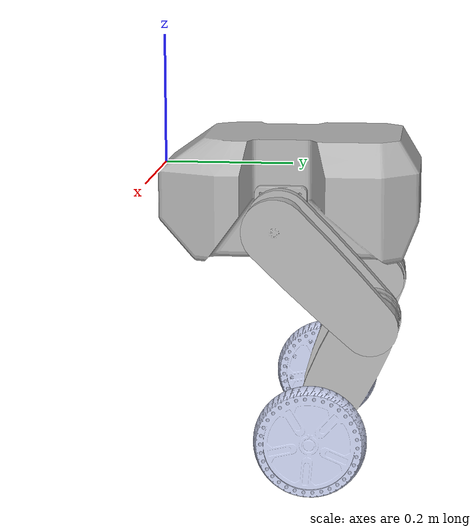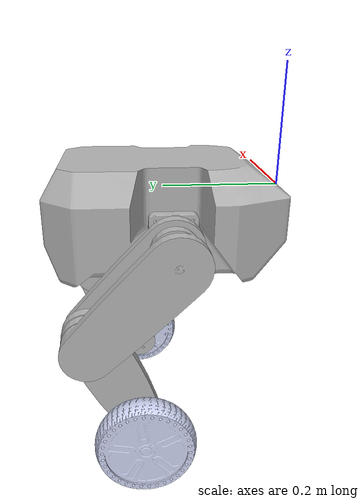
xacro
<?xml version="1.0"?>
<robot xmlns:xacro="http://www.ros.org/wiki/xacro" name="reflex">

  <!-- Arguments -->
  <xacro:arg name="prefix" default=""/>
  <xacro:property name="prefix" value="$(arg prefix)" />

  <!-- Include components -->
  <xacro:include filename="$(find reflex_descriptions)/urdf/components/base.xacro" />
  <xacro:include filename="$(find reflex_descriptions)/urdf/components/left_leg.xacro" />
  <xacro:include filename="$(find reflex_descriptions)/urdf/components/right_leg.xacro" />

  <!-- Build robot -->
  <link name="${prefix}base_root"/>

  <xacro:reflex_base prefix="${prefix}" />

  <joint name="${prefix}base_root_joint" type="fixed">
    <parent link="${prefix}base_root" />
    <child link="${prefix}base_link" />
    <origin xyz="0 0 0" rpy="0 0 0" />
  </joint>

  <xacro:reflex_left_leg prefix="${prefix}" parent="${prefix}base_link" />
  <xacro:reflex_right_leg prefix="${prefix}" parent="${prefix}base_link" />

</robot>

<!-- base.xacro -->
<robot xmlns:xacro="http://www.ros.org/wiki/xacro">

  <xacro:macro name="reflex_base" params="prefix">

    <link name="${prefix}base_link">
      <inertial>
        <origin xyz="2.92339840704624E-06 0.195675441175354 -0.0667288023592446" rpy="0 0 0"/>
        <mass value="4.45917765815169"/>
        <inertia
          ixx="0.0475762402880365" ixy="3.04028327588199E-06" ixz="-2.90552883862899E-06"
          iyy="0.0259424865395697" iyz="-5.46372140224359E-05"
          izz="0.0523223046501137"/>
      </inertial>

      <visual>
        <origin xyz="0 0 0" rpy="0 0 0"/>
        <geometry>
          <!-- Update path to your package layout -->
          <mesh filename="$(find reflex_descriptions)/models/Main.STL"/>
        </geometry>
        <material name="reflex_grey">
          <color rgba="0.698039215686274 0.698039215686274 0.698039215686274 1"/>
        </material>
      </visual>

      <collision>
        <origin xyz="0 0 0" rpy="0 0 0"/>
        <geometry>
          <mesh filename="$(find reflex_descriptions)/models/Main.STL"/>
        </geometry>
      </collision>
    </link>

  </xacro:macro>

</robot>

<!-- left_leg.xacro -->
<robot xmlns:xacro="http://www.ros.org/wiki/xacro">

  <xacro:macro name="reflex_left_leg" params="prefix parent">

    <!-- Left Hip link -->
    <link name="${prefix}Left_Hip">
      <inertial>
        <origin xyz="0.049151 -0.09472 -4.3652E-08" rpy="0 0 0"/>
        <mass value="1.5424"/>
        <inertia
          ixx="0.010215" ixy="0.0004342" ixz="-5.0861E-10"
          iyy="0.0011474" iyz="-1.6319E-10"
          izz="0.0093639"/>
      </inertial>
      <visual>
        <origin xyz="0 0 0" rpy="0 0 0"/>
        <geometry>
          <mesh filename="$(find reflex_descriptions)/models/Left_Hip.STL"/>
        </geometry>
        <material name="reflex_grey">
          <color rgba="0.69804 0.69804 0.69804 1"/>
        </material>
      </visual>
      <collision>
        <origin xyz="0 0 0" rpy="0 0 0"/>
        <geometry>
          <mesh filename="$(find reflex_descriptions)/models/Left_Hip.STL"/>
        </geometry>
      </collision>
    </link>

    <!-- Left Hip joint -->
    <joint name="${prefix}Left_Hip_joint" type="revolute">
      <origin xyz="0.2064 0.19 -0.07" rpy="0.7854 0 3.1416"/>
      <parent link="${parent}"/>
      <child link="${prefix}Left_Hip"/>
      <!-- ! NOTE: SolidWorks exported axis="0 0 0" (invalid). Fix axis based on your hinge. -->
      <axis xyz="-1 0 0"/>
      <!-- ! NOTE: Lower limits is set to -360 to 360 to be able to apply offsets -->
      <limit lower="-3.14159" upper="3.14159" effort="11.0" velocity="43.98"/>
    </joint>

    <!-- Left Knee link -->
    <link name="${prefix}Left_Knee">
      <inertial>
        <origin xyz="0.015086 -0.090977 0" rpy="0 0 0"/>
        <mass value="0.77384"/>
        <inertia
          ixx="0.0056428" ixy="1.1442E-05" ixz="-8.411E-19"
          iyy="0.00055297" iyz="-3.8218E-18"
          izz="0.0052588"/>
      </inertial>
      <visual>
        <origin xyz="0 0 0" rpy="0 0 0"/>
        <geometry>
          <mesh filename="$(find reflex_descriptions)/models/Left_Knee.STL"/>
        </geometry>
        <material name="reflex_grey">
          <color rgba="0.69804 0.69804 0.69804 1"/>
        </material>
      </visual>
      <collision>
        <origin xyz="0 0 0" rpy="0 0 0"/>
        <geometry>
          <mesh filename="$(find reflex_descriptions)/models/Left_Knee.STL"/>
        </geometry>
      </collision>
    </link>

    <!-- Left Knee joint -->
    <joint name="${prefix}Left_Knee_joint" type="revolute">
      <origin xyz="0.0775 -0.2 0" rpy="1.8984 0 3.1416"/>
      <parent link="${prefix}Left_Hip"/>
      <child link="${prefix}Left_Knee"/>
      <!-- ! NOTE: SolidWorks exported axis="0 0 0" (invalid). Fix axis based on your hinge. -->
      <axis xyz="1 0 0"/>
      <!-- ! NOTE: Lower limits is set to -360 to 360 to be able to apply offsets -->
      <limit lower="-3.14159" upper="3.14159" effort="11.0" velocity="43.98"/>
    </joint>

    <!-- Left Wheel link -->
    <link name="${prefix}Left_Wheel">
      <inertial>
        <origin xyz="-2.7523E-06 1.3292E-06 0.029027" rpy="0 0 0"/>
        <mass value="0.5169"/>
        <inertia
          ixx="0.0012561" ixy="6.7857E-09" ixz="2.8567E-08"
          iyy="0.0012561" iyz="-7.6346E-09"
          izz="0.0023843"/>
      </inertial>
      <visual>
        <origin xyz="0 0 0" rpy="0 0 0"/>
        <geometry>
          <mesh filename="$(find reflex_descriptions)/models/Left_Wheel.STL"/>
        </geometry>
        <material name="reflex_blue">
          <color rgba="0.79216 0.81961 0.93333 1"/>
        </material>
      </visual>
      <collision>
        <origin xyz="0 0 0" rpy="0 0 0"/>
        <geometry>
          <mesh filename="$(find reflex_descriptions)/models/Left_Wheel.STL"/>
        </geometry>
      </collision>
    </link>

    <!-- Left Wheel joint -->
    <joint name="${prefix}Left_Wheel_Joint" type="continuous">
      <origin xyz="0.04 -0.2 0" rpy="-1.5708 -0.91317 -1.5708"/>
      <parent link="${prefix}Left_Knee"/>
      <child link="${prefix}Left_Wheel"/>
      <axis xyz="0 0 1"/>
    </joint>

  </xacro:macro>

</robot>

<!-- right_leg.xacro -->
<robot xmlns:xacro="http://www.ros.org/wiki/xacro">

  <xacro:macro name="reflex_right_leg" params="prefix parent">

    <!-- Right Hip link -->
    <link name="${prefix}Right_Hip">
      <inertial>
        <origin xyz="-0.048349 -0.040744 0.08551" rpy="0 0 0"/>
        <mass value="1.5424"/>
        <inertia
          ixx="0.010215" ixy="0.00018677" ixz="-0.00039198"
          iyy="0.0078436" iyz="0.0031906"
          izz="0.0026677"/>
      </inertial>
      <visual>
        <origin xyz="0 0 0" rpy="0 0 0"/>
        <geometry>
          <mesh filename="$(find reflex_descriptions)/models/Right_Hip.STL"/>
        </geometry>
        <material name="reflex_grey">
          <color rgba="0.69804 0.69804 0.69804 1"/>
        </material>
      </visual>
      <collision>
        <origin xyz="0 0 0" rpy="0 0 0"/>
        <geometry>
          <mesh filename="$(find reflex_descriptions)/models/Right_Hip.STL"/>
        </geometry>
      </collision>
    </link>

    <!-- Right Hip joint -->
    <joint name="${prefix}Right_Hip_Joint" type="revolute">
      <origin xyz="-0.1089 0.19 -0.07" rpy="-2.8009 0 0"/>
      <parent link="${parent}"/>
      <child link="${prefix}Right_Hip"/>
      <axis xyz="1 0 0"/>
      <!-- NOTE: SolidWorks exported 0/0 limits. Replace with real joint limits. -->
      <!-- ! NOTE: Lower limits is set to -360 to 360 to be able to apply offsets -->
      <limit lower="-3.14159" upper="3.14159" effort="11.0" velocity="43.98"/>
    </joint>

    <!-- Right Knee link -->
    <link name="${prefix}Right_Knee">
      <inertial>
        <origin xyz="0.015086 -0.090977 -3.8858E-16" rpy="0 0 0"/>
        <mass value="0.77384"/>
        <inertia
          ixx="0.0056428" ixy="1.1442E-05" ixz="-1.8135E-18"
          iyy="0.00055297" iyz="-1.297E-17"
          izz="0.0052588"/>
      </inertial>
      <visual>
        <origin xyz="0 0 0" rpy="0 0 0"/>
        <geometry>
          <mesh filename="$(find reflex_descriptions)/models/Right_Knee.STL"/>
        </geometry>
        <material name="reflex_grey">
          <color rgba="0.69804 0.69804 0.69804 1"/>
        </material>
      </visual>
      <collision>
        <origin xyz="0 0 0" rpy="0 0 0"/>
        <geometry>
          <mesh filename="$(find reflex_descriptions)/models/Right_Knee.STL"/>
        </geometry>
      </collision>
    </link>

    <!-- Right Knee joint -->
    <joint name="${prefix}Right_Knee_joint" type="revolute">
      <origin xyz="-0.02 -0.08603 0.18055" rpy="-0.77222 0 3.1416"/>
      <parent link="${prefix}Right_Hip"/>
      <child link="${prefix}Right_Knee"/>
      <!-- ! NOTE: SolidWorks exported axis="0 0 0" (invalid). Fix axis based on your hinge. -->
      <axis xyz="-1 0 0"/>
      <!-- ! NOTE: Lower limits is set to -360 to 360 to be able to apply offsets -->
      <limit lower="-3.14159" upper="3.14159" effort="11.0" velocity="43.98"/>
    </joint>

    <!-- Right Wheel link -->
    <link name="${prefix}Right_Wheel">
      <inertial>
        <origin xyz="-0.00020036 1.3304E-06 0.029027" rpy="0 0 0"/>
        <mass value="0.5169"/>
        <inertia
          ixx="0.0012561" ixy="6.8224E-09" ixz="2.8546E-08"
          iyy="0.0012561" iyz="-7.6289E-09"
          izz="0.0023843"/>
      </inertial>
      <visual>
        <origin xyz="0 0 0" rpy="0 0 0"/>
        <geometry>
          <mesh filename="$(find reflex_descriptions)/models/Right_Wheel.STL"/>
        </geometry>
        <material name="reflex_blue">
          <color rgba="0.79216 0.81961 0.93333 1"/>
        </material>
      </visual>
      <collision>
        <origin xyz="0 0 0" rpy="0 0 0"/>
        <geometry>
          <mesh filename="$(find reflex_descriptions)/models/Right_Wheel.STL"/>
        </geometry>
      </collision>
    </link>

    <!-- Right Wheel joint -->
    <joint name="${prefix}Right_Wheel_Joint" type="continuous">
      <origin xyz="0.04 -0.2 0" rpy="1.5708 -0.91317 1.5708"/>
      <parent link="${prefix}Right_Knee"/>
      <child link="${prefix}Right_Wheel"/>
      <axis xyz="0 0 -1"/>
    </joint>

  </xacro:macro>

</robot>
